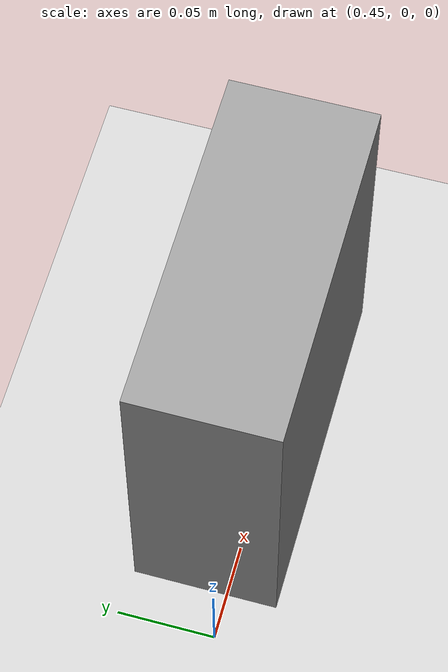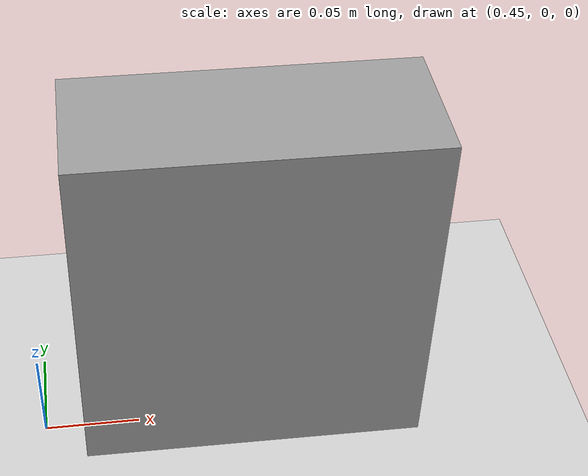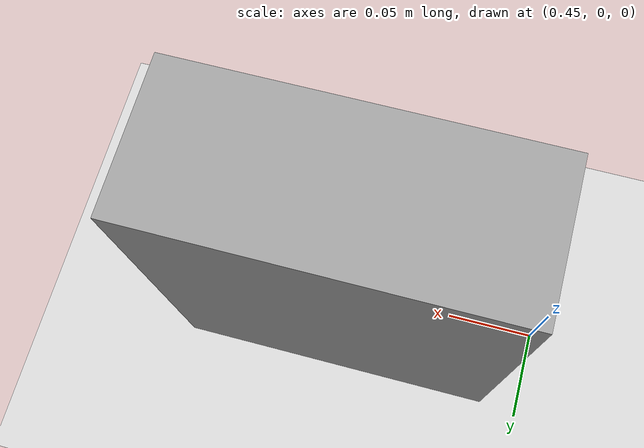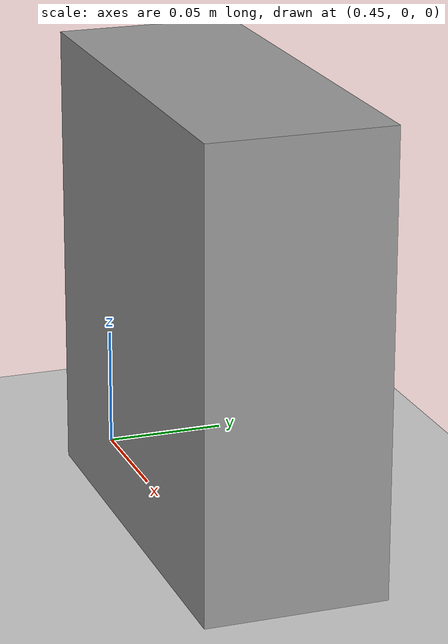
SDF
<sdf version="1.6">
 <world name="default">
  <model name="ground_plane">
   <static>1</static>
   <link name="link">
    <collision name="collision">
     <geometry><plane><normal>0 0 1</normal><size>100 100</size></plane></geometry>
     <surface>
      <contact><collide_bitmask>65535</collide_bitmask></contact>
      <friction><ode><mu>100</mu><mu2>50</mu2></ode></friction>
     </surface>
    </collision>
    <visual name="visual">
     <cast_shadows>0</cast_shadows>
     <geometry><plane><normal>0 0 1</normal><size>100 100</size></plane></geometry>
     <material>
      <script><uri>file://media/materials/scripts/gazebo.material</uri><name>Gazebo/Grey</name></script>
     </material>
    </visual>
   </link>
  </model>
  <model name="unit_box">
   <pose>0.559983 0.010543 0.09718 -0.00013 0.004637 -0.001711</pose>
   <link name="unit_box::link">
    <inertial>
     <mass>1</mass>
     <inertia>
      <ixx>0.166667</ixx>
      <ixy>0</ixy>
      <ixz>0</ixz>
      <iyy>0.166667</iyy>
      <iyz>0</iyz>
      <izz>0.166667</izz>
     </inertia>
    </inertial>
    <collision name="collision">
     <geometry><box><size>0.175946 0.0734556 0.185035</size></box></geometry>
    </collision>
    <visual name="visual">
     <geometry><box><size>0.175946 0.0734556 0.185035</size></box></geometry>
     <material>
      <script><name>Gazebo/Grey</name><uri>file://media/materials/scripts/gazebo.material</uri></script>
     </material>
    </visual>
    <kinematic>1</kinematic>
   </link>
  </model>
 </world>
</sdf>
